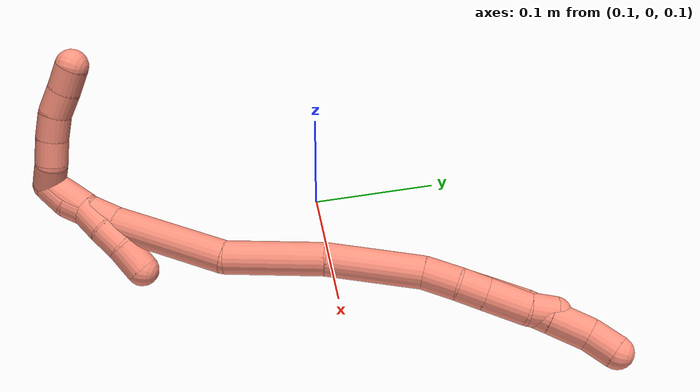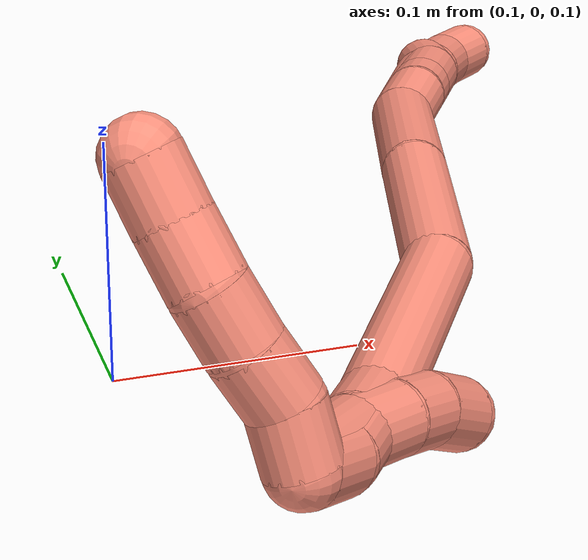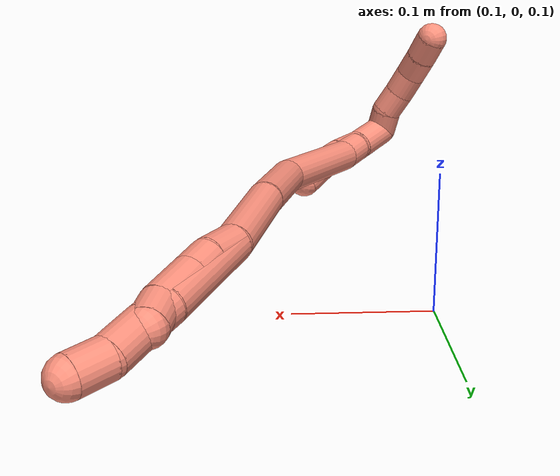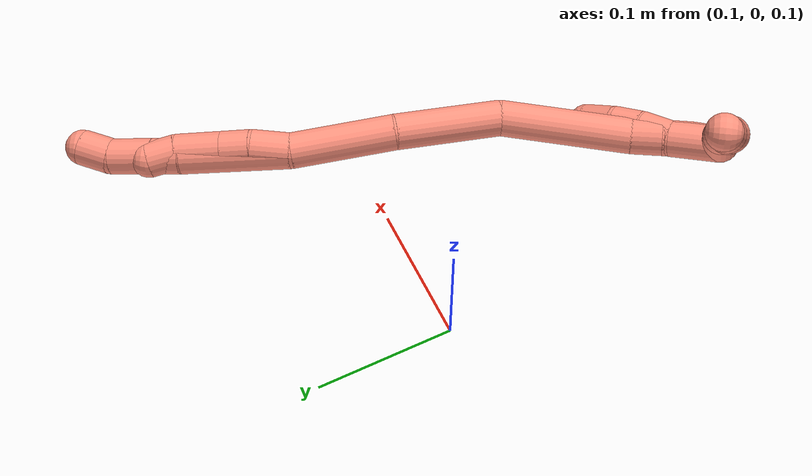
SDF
<sdf version="1.7">
 <world name="default">
  <model name="16">
   <static>0</static>
   <link name="16">
    <collision name="collision-cylinder-e_1_2_8">
     <pose>-0.000364 0.005638 0.037938 -0.14752 -0.009488 0.000701</pose>
     <geometry><cylinder><radius>0.0125</radius><length>0.076712</length></cylinder></geometry>
     <surface>
      <friction><ode><mu>1.16</mu><mu2>1.16</mu2><slip1>0</slip1><slip2>0</slip2></ode></friction>
      <contact><ode><kp>1e+06</kp><kd>1</kd><max_vel>0</max_vel><min_depth>0.001</min_depth></ode></contact>
     </surface>
    </collision>
    <visual name="visual-cylinder-e_1_2_8">
     <pose>-0.000364 0.005638 0.037938 -0.14752 -0.009488 0.000701</pose>
     <geometry><cylinder><radius>0.0125</radius><length>0.076712</length></cylinder></geometry>
     <material><ambient>1 0.576471 0.494118 1</ambient></material>
    </visual>
    <collision name="collision-cylinder-e_2_8_9">
     <pose>0.000125 0.012508 0.085916 -0.122175 0.084129 -0.005149</pose>
     <geometry><cylinder><radius>0.0125</radius><length>0.020303</length></cylinder></geometry>
     <surface>
      <friction><ode><mu>1.16</mu><mu2>1.16</mu2><slip1>0</slip1><slip2>0</slip2></ode></friction>
      <contact><ode><kp>1e+06</kp><kd>1</kd><max_vel>0</max_vel><min_depth>0.001</min_depth></ode></contact>
     </surface>
    </collision>
    <visual name="visual-cylinder-e_2_8_9">
     <pose>0.000125 0.012508 0.085916 -0.122175 0.084129 -0.005149</pose>
     <geometry><cylinder><radius>0.0125</radius><length>0.020303</length></cylinder></geometry>
     <material><ambient>1 0.576471 0.494118 1</ambient></material>
    </visual>
    <collision name="collision-cylinder-e_3_9_10">
     <pose>0.002342 0.016038 0.110742 -0.154128 0.090893 -0.007023</pose>
     <geometry><cylinder><radius>0.0125</radius><length>0.030051</length></cylinder></geometry>
     <surface>
      <friction><ode><mu>1.16</mu><mu2>1.16</mu2><slip1>0</slip1><slip2>0</slip2></ode></friction>
      <contact><ode><kp>1e+06</kp><kd>1</kd><max_vel>0</max_vel><min_depth>0.001</min_depth></ode></contact>
     </surface>
    </collision>
    <visual name="visual-cylinder-e_3_9_10">
     <pose>0.002342 0.016038 0.110742 -0.154128 0.090893 -0.007023</pose>
     <geometry><cylinder><radius>0.0125</radius><length>0.030051</length></cylinder></geometry>
     <material><ambient>1 0.576471 0.494118 1</ambient></material>
    </visual>
    <collision name="collision-cylinder-e_4_10_6">
     <pose>0.006717 0.017307 0.136544 0.093072 0.265747 0.012449</pose>
     <geometry><cylinder><radius>0.0125</radius><length>0.022934</length></cylinder></geometry>
     <surface>
      <friction><ode><mu>1.16</mu><mu2>1.16</mu2><slip1>0</slip1><slip2>0</slip2></ode></friction>
      <contact><ode><kp>1e+06</kp><kd>1</kd><max_vel>0</max_vel><min_depth>0.001</min_depth></ode></contact>
     </surface>
    </collision>
    <visual name="visual-cylinder-e_4_10_6">
     <pose>0.006717 0.017307 0.136544 0.093072 0.265747 0.012449</pose>
     <geometry><cylinder><radius>0.0125</radius><length>0.022934</length></cylinder></geometry>
     <material><ambient>1 0.576471 0.494118 1</ambient></material>
    </visual>
    <collision name="collision-cylinder-e_1_2_11">
     <pose>-6.9e-05 -7.1e-05 0.013604 0.005227 -0.005088 -1.3e-05</pose>
     <geometry><cylinder><radius>0.0125</radius><length>0.027209</length></cylinder></geometry>
     <surface>
      <friction><ode><mu>1.16</mu><mu2>1.16</mu2><slip1>0</slip1><slip2>0</slip2></ode></friction>
      <contact><ode><kp>1e+06</kp><kd>1</kd><max_vel>0</max_vel><min_depth>0.001</min_depth></ode></contact>
     </surface>
    </collision>
    <visual name="visual-cylinder-e_1_2_11">
     <pose>-6.9e-05 -7.1e-05 0.013604 0.005227 -0.005088 -1.3e-05</pose>
     <geometry><cylinder><radius>0.0125</radius><length>0.027209</length></cylinder></geometry>
     <material><ambient>1 0.576471 0.494118 1</ambient></material>
    </visual>
    <collision name="collision-cylinder-e_2_11_12">
     <pose>6.5e-05 0.001632 0.037276 -0.174477 0.019936 -0.001744</pose>
     <geometry><cylinder><radius>0.0125</radius><length>0.02045</length></cylinder></geometry>
     <surface>
      <friction><ode><mu>1.16</mu><mu2>1.16</mu2><slip1>0</slip1><slip2>0</slip2></ode></friction>
      <contact><ode><kp>1e+06</kp><kd>1</kd><max_vel>0</max_vel><min_depth>0.001</min_depth></ode></contact>
     </surface>
    </collision>
    <visual name="visual-cylinder-e_2_11_12">
     <pose>6.5e-05 0.001632 0.037276 -0.174477 0.019936 -0.001744</pose>
     <geometry><cylinder><radius>0.0125</radius><length>0.02045</length></cylinder></geometry>
     <material><ambient>1 0.576471 0.494118 1</ambient></material>
    </visual>
    <collision name="collision-cylinder-e_3_12_13">
     <pose>0.00053 0.006155 0.063249 -0.17109 0.016156 -0.001385</pose>
     <geometry><cylinder><radius>0.0125</radius><length>0.032287</length></cylinder></geometry>
     <surface>
      <friction><ode><mu>1.16</mu><mu2>1.16</mu2><slip1>0</slip1><slip2>0</slip2></ode></friction>
      <contact><ode><kp>1e+06</kp><kd>1</kd><max_vel>0</max_vel><min_depth>0.001</min_depth></ode></contact>
     </surface>
    </collision>
    <visual name="visual-cylinder-e_3_12_13">
     <pose>0.00053 0.006155 0.063249 -0.17109 0.016156 -0.001385</pose>
     <geometry><cylinder><radius>0.0125</radius><length>0.032287</length></cylinder></geometry>
     <material><ambient>1 0.576471 0.494118 1</ambient></material>
    </visual>
    <collision name="collision-cylinder-e_4_13_5">
     <pose>-0.000968 0.012036 0.088516 -0.322949 -0.176361 0.028801</pose>
     <geometry><cylinder><radius>0.0125</radius><length>0.020055</length></cylinder></geometry>
     <surface>
      <friction><ode><mu>1.16</mu><mu2>1.16</mu2><slip1>0</slip1><slip2>0</slip2></ode></friction>
      <contact><ode><kp>1e+06</kp><kd>1</kd><max_vel>0</max_vel><min_depth>0.001</min_depth></ode></contact>
     </surface>
    </collision>
    <visual name="visual-cylinder-e_4_13_5">
     <pose>-0.000968 0.012036 0.088516 -0.322949 -0.176361 0.028801</pose>
     <geometry><cylinder><radius>0.0125</radius><length>0.020055</length></cylinder></geometry>
     <material><ambient>1 0.576471 0.494118 1</ambient></material>
    </visual>
    <collision name="collision-cylinder-e_1_2_14">
     <pose>0.007102 -0.007252 -0.034745 2.93583 0.197476 1.52943</pose>
     <geometry><cylinder><radius>0.0125</radius><length>0.072395</length></cylinder></geometry>
     <surface>
      <friction><ode><mu>1.16</mu><mu2>1.16</mu2><slip1>0</slip1><slip2>0</slip2></ode></friction>
      <contact><ode><kp>1e+06</kp><kd>1</kd><max_vel>0</max_vel><min_depth>0.001</min_depth></ode></contact>
     </surface>
    </collision>
    <visual name="visual-cylinder-e_1_2_14">
     <pose>0.007102 -0.007252 -0.034745 2.93583 0.197476 1.52943</pose>
     <geometry><cylinder><radius>0.0125</radius><length>0.072395</length></cylinder></geometry>
     <material><ambient>1 0.576471 0.494118 1</ambient></material>
    </visual>
    <collision name="collision-cylinder-e_2_14_15">
     <pose>0.025492 -0.018253 -0.104635 3.0353 0.309152 2.48361</pose>
     <geometry><cylinder><radius>0.0125</radius><length>0.074205</length></cylinder></geometry>
     <surface>
      <friction><ode><mu>1.16</mu><mu2>1.16</mu2><slip1>0</slip1><slip2>0</slip2></ode></friction>
      <contact><ode><kp>1e+06</kp><kd>1</kd><max_vel>0</max_vel><min_depth>0.001</min_depth></ode></contact>
     </surface>
    </collision>
    <visual name="visual-cylinder-e_2_14_15">
     <pose>0.025492 -0.018253 -0.104635 3.0353 0.309152 2.48361</pose>
     <geometry><cylinder><radius>0.0125</radius><length>0.074205</length></cylinder></geometry>
     <material><ambient>1 0.576471 0.494118 1</ambient></material>
    </visual>
    <collision name="collision-cylinder-e_3_15_16">
     <pose>0.03789 -0.019075 -0.185282 -3.07733 0.02432 -0.723355</pose>
     <geometry><cylinder><radius>0.0125</radius><length>0.091222</length></cylinder></geometry>
     <surface>
      <friction><ode><mu>1.16</mu><mu2>1.16</mu2><slip1>0</slip1><slip2>0</slip2></ode></friction>
      <contact><ode><kp>1e+06</kp><kd>1</kd><max_vel>0</max_vel><min_depth>0.001</min_depth></ode></contact>
     </surface>
    </collision>
    <visual name="visual-cylinder-e_3_15_16">
     <pose>0.03789 -0.019075 -0.185282 -3.07733 0.02432 -0.723355</pose>
     <geometry><cylinder><radius>0.0125</radius><length>0.091222</length></cylinder></geometry>
     <material><ambient>1 0.576471 0.494118 1</ambient></material>
    </visual>
    <collision name="collision-cylinder-e_4_16_17">
     <pose>0.038152 -0.016897 -0.241668 3.07275 -0.077462 -1.68863</pose>
     <geometry><cylinder><radius>0.0125</radius><length>0.021882</length></cylinder></geometry>
     <surface>
      <friction><ode><mu>1.16</mu><mu2>1.16</mu2><slip1>0</slip1><slip2>0</slip2></ode></friction>
      <contact><ode><kp>1e+06</kp><kd>1</kd><max_vel>0</max_vel><min_depth>0.001</min_depth></ode></contact>
     </surface>
    </collision>
    <visual name="visual-cylinder-e_4_16_17">
     <pose>0.038152 -0.016897 -0.241668 3.07275 -0.077462 -1.68863</pose>
     <geometry><cylinder><radius>0.0125</radius><length>0.021882</length></cylinder></geometry>
     <material><ambient>1 0.576471 0.494118 1</ambient></material>
    </visual>
    <collision name="collision-cylinder-e_5_17_18">
     <pose>0.036483 -0.018208 -0.262586 3.08576 -0.081644 -1.94218</pose>
     <geometry><cylinder><radius>0.0125</radius><length>0.020171</length></cylinder></geometry>
     <surface>
      <friction><ode><mu>1.16</mu><mu2>1.16</mu2><slip1>0</slip1><slip2>0</slip2></ode></friction>
      <contact><ode><kp>1e+06</kp><kd>1</kd><max_vel>0</max_vel><min_depth>0.001</min_depth></ode></contact>
     </surface>
    </collision>
    <visual name="visual-cylinder-e_5_17_18">
     <pose>0.036483 -0.018208 -0.262586 3.08576 -0.081644 -1.94218</pose>
     <geometry><cylinder><radius>0.0125</radius><length>0.020171</length></cylinder></geometry>
     <material><ambient>1 0.576471 0.494118 1</ambient></material>
    </visual>
    <collision name="collision-cylinder-e_6_18_1">
     <pose>0.031783 -0.019714 -0.28186 3.0396 -0.395539 -2.6428</pose>
     <geometry><cylinder><radius>0.0125</radius><length>0.020125</length></cylinder></geometry>
     <surface>
      <friction><ode><mu>1.16</mu><mu2>1.16</mu2><slip1>0</slip1><slip2>0</slip2></ode></friction>
      <contact><ode><kp>1e+06</kp><kd>1</kd><max_vel>0</max_vel><min_depth>0.001</min_depth></ode></contact>
     </surface>
    </collision>
    <visual name="visual-cylinder-e_6_18_1">
     <pose>0.031783 -0.019714 -0.28186 3.0396 -0.395539 -2.6428</pose>
     <geometry><cylinder><radius>0.0125</radius><length>0.020125</length></cylinder></geometry>
     <material><ambient>1 0.576471 0.494118 1</ambient></material>
    </visual>
    <collision name="collision-cylinder-e_1_1_19">
     <pose>0.020254 -0.027026 -0.290138 1.42131 -0.871321 -0.762105</pose>
     <geometry><cylinder><radius>0.0125</radius><length>0.02</length></cylinder></geometry>
     <surface>
      <friction><ode><mu>1.16</mu><mu2>1.16</mu2><slip1>0</slip1><slip2>0</slip2></ode></friction>
      <contact><ode><kp>1e+06</kp><kd>1</kd><max_vel>0</max_vel><min_depth>0.001</min_depth></ode></contact>
     </surface>
    </collision>
    <visual name="visual-cylinder-e_1_1_19">
     <pose>0.020254 -0.027026 -0.290138 1.42131 -0.871321 -0.762105</pose>
     <geometry><cylinder><radius>0.0125</radius><length>0.02</length></cylinder></geometry>
     <material><ambient>1 0.576471 0.494118 1</ambient></material>
    </visual>
    <collision name="collision-cylinder-e_2_19_20">
     <pose>0.003628 -0.037625 -0.29042 1.85587 -1.11403 -1.38732</pose>
     <geometry><cylinder><radius>0.0125</radius><length>0.02</length></cylinder></geometry>
     <surface>
      <friction><ode><mu>1.16</mu><mu2>1.16</mu2><slip1>0</slip1><slip2>0</slip2></ode></friction>
      <contact><ode><kp>1e+06</kp><kd>1</kd><max_vel>0</max_vel><min_depth>0.001</min_depth></ode></contact>
     </surface>
    </collision>
    <visual name="visual-cylinder-e_2_19_20">
     <pose>0.003628 -0.037625 -0.29042 1.85587 -1.11403 -1.38732</pose>
     <geometry><cylinder><radius>0.0125</radius><length>0.02</length></cylinder></geometry>
     <material><ambient>1 0.576471 0.494118 1</ambient></material>
    </visual>
    <collision name="collision-cylinder-e_3_20_21">
     <pose>-0.014295 -0.04632 -0.291788 1.59929 -1.10798 -1.13364</pose>
     <geometry><cylinder><radius>0.0125</radius><length>0.02</length></cylinder></geometry>
     <surface>
      <friction><ode><mu>1.16</mu><mu2>1.16</mu2><slip1>0</slip1><slip2>0</slip2></ode></friction>
      <contact><ode><kp>1e+06</kp><kd>1</kd><max_vel>0</max_vel><min_depth>0.001</min_depth></ode></contact>
     </surface>
    </collision>
    <visual name="visual-cylinder-e_3_20_21">
     <pose>-0.014295 -0.04632 -0.291788 1.59929 -1.10798 -1.13364</pose>
     <geometry><cylinder><radius>0.0125</radius><length>0.02</length></cylinder></geometry>
     <material><ambient>1 0.576471 0.494118 1</ambient></material>
    </visual>
    <collision name="collision-cylinder-e_4_21_22">
     <pose>-0.032199 -0.054714 -0.289831 1.08332 -1.10967 -0.713874</pose>
     <geometry><cylinder><radius>0.0125</radius><length>0.02</length></cylinder></geometry>
     <surface>
      <friction><ode><mu>1.16</mu><mu2>1.16</mu2><slip1>0</slip1><slip2>0</slip2></ode></friction>
      <contact><ode><kp>1e+06</kp><kd>1</kd><max_vel>0</max_vel><min_depth>0.001</min_depth></ode></contact>
     </surface>
    </collision>
    <visual name="visual-cylinder-e_4_21_22">
     <pose>-0.032199 -0.054714 -0.289831 1.08332 -1.10967 -0.713874</pose>
     <geometry><cylinder><radius>0.0125</radius><length>0.02</length></cylinder></geometry>
     <material><ambient>1 0.576471 0.494118 1</ambient></material>
    </visual>
    <collision name="collision-cylinder-e_5_22_4">
     <pose>-0.049965 -0.063008 -0.28592 1.17427 -1.07819 -0.75765</pose>
     <geometry><cylinder><radius>0.0125</radius><length>0.02</length></cylinder></geometry>
     <surface>
      <friction><ode><mu>1.16</mu><mu2>1.16</mu2><slip1>0</slip1><slip2>0</slip2></ode></friction>
      <contact><ode><kp>1e+06</kp><kd>1</kd><max_vel>0</max_vel><min_depth>0.001</min_depth></ode></contact>
     </surface>
    </collision>
    <visual name="visual-cylinder-e_5_22_4">
     <pose>-0.049965 -0.063008 -0.28592 1.17427 -1.07819 -0.75765</pose>
     <geometry><cylinder><radius>0.0125</radius><length>0.02</length></cylinder></geometry>
     <material><ambient>1 0.576471 0.494118 1</ambient></material>
    </visual>
    <collision name="collision-cylinder-e_1_1_23">
     <pose>0.032049 -0.019322 -0.274447 -0.080168 0.243113 -0.009798</pose>
     <geometry><cylinder><radius>0.0125</radius><length>0.03442</length></cylinder></geometry>
     <surface>
      <friction><ode><mu>1.16</mu><mu2>1.16</mu2><slip1>0</slip1><slip2>0</slip2></ode></friction>
      <contact><ode><kp>1e+06</kp><kd>1</kd><max_vel>0</max_vel><min_depth>0.001</min_depth></ode></contact>
     </surface>
    </collision>
    <visual name="visual-cylinder-e_1_1_23">
     <pose>0.032049 -0.019322 -0.274447 -0.080168 0.243113 -0.009798</pose>
     <geometry><cylinder><radius>0.0125</radius><length>0.03442</length></cylinder></geometry>
     <material><ambient>1 0.576471 0.494118 1</ambient></material>
    </visual>
    <collision name="collision-cylinder-e_2_23_24">
     <pose>0.040969 -0.018641 -0.247613 0.064444 0.43786 0.014343</pose>
     <geometry><cylinder><radius>0.0125</radius><length>0.022536</length></cylinder></geometry>
     <surface>
      <friction><ode><mu>1.16</mu><mu2>1.16</mu2><slip1>0</slip1><slip2>0</slip2></ode></friction>
      <contact><ode><kp>1e+06</kp><kd>1</kd><max_vel>0</max_vel><min_depth>0.001</min_depth></ode></contact>
     </surface>
    </collision>
    <visual name="visual-cylinder-e_2_23_24">
     <pose>0.040969 -0.018641 -0.247613 0.064444 0.43786 0.014343</pose>
     <geometry><cylinder><radius>0.0125</radius><length>0.022536</length></cylinder></geometry>
     <material><ambient>1 0.576471 0.494118 1</ambient></material>
    </visual>
    <collision name="collision-cylinder-e_3_24_25">
     <pose>0.0498 -0.01854 -0.228304 -0.082907 0.416707 -0.017538</pose>
     <geometry><cylinder><radius>0.0125</radius><length>0.020028</length></cylinder></geometry>
     <surface>
      <friction><ode><mu>1.16</mu><mu2>1.16</mu2><slip1>0</slip1><slip2>0</slip2></ode></friction>
      <contact><ode><kp>1e+06</kp><kd>1</kd><max_vel>0</max_vel><min_depth>0.001</min_depth></ode></contact>
     </surface>
    </collision>
    <visual name="visual-cylinder-e_3_24_25">
     <pose>0.0498 -0.01854 -0.228304 -0.082907 0.416707 -0.017538</pose>
     <geometry><cylinder><radius>0.0125</radius><length>0.020028</length></cylinder></geometry>
     <material><ambient>1 0.576471 0.494118 1</ambient></material>
    </visual>
    <collision name="collision-cylinder-e_4_25_3">
     <pose>0.059715 -0.015058 -0.209657 -0.278686 0.534388 -0.076747</pose>
     <geometry><cylinder><radius>0.0125</radius><length>0.023016</length></cylinder></geometry>
     <surface>
      <friction><ode><mu>1.16</mu><mu2>1.16</mu2><slip1>0</slip1><slip2>0</slip2></ode></friction>
      <contact><ode><kp>1e+06</kp><kd>1</kd><max_vel>0</max_vel><min_depth>0.001</min_depth></ode></contact>
     </surface>
    </collision>
    <visual name="visual-cylinder-e_4_25_3">
     <pose>0.059715 -0.015058 -0.209657 -0.278686 0.534388 -0.076747</pose>
     <geometry><cylinder><radius>0.0125</radius><length>0.023016</length></cylinder></geometry>
     <material><ambient>1 0.576471 0.494118 1</ambient></material>
    </visual>
    <collision name="collision-sphere-3">
     <pose>0.065576 -0.012333 -0.200135 0 -0 0</pose>
     <geometry><sphere><radius>0.0125</radius></sphere></geometry>
     <surface>
      <friction><ode><mu>1.16</mu><mu2>1.16</mu2><slip1>0</slip1><slip2>0</slip2></ode></friction>
      <contact><ode><kp>1e+06</kp><kd>1</kd><max_vel>0</max_vel><min_depth>0.001</min_depth></ode></contact>
     </surface>
    </collision>
    <visual name="visual-sphere-3">
     <pose>0.065576 -0.012333 -0.200135 0 -0 0</pose>
     <geometry><sphere><radius>0.0125</radius></sphere></geometry>
     <material><ambient>1 0.576471 0.494118 1</ambient></material>
    </visual>
    <collision name="collision-sphere-25">
     <pose>0.053853 -0.017782 -0.219178 0 -0 0</pose>
     <geometry><sphere><radius>0.0125</radius></sphere></geometry>
     <surface>
      <friction><ode><mu>1.16</mu><mu2>1.16</mu2><slip1>0</slip1><slip2>0</slip2></ode></friction>
      <contact><ode><kp>1e+06</kp><kd>1</kd><max_vel>0</max_vel><min_depth>0.001</min_depth></ode></contact>
     </surface>
    </collision>
    <visual name="visual-sphere-25">
     <pose>0.053853 -0.017782 -0.219178 0 -0 0</pose>
     <geometry><sphere><radius>0.0125</radius></sphere></geometry>
     <material><ambient>1 0.576471 0.494118 1</ambient></material>
    </visual>
    <collision name="collision-sphere-24">
     <pose>0.045747 -0.019299 -0.23743 0 -0 0</pose>
     <geometry><sphere><radius>0.0125</radius></sphere></geometry>
     <surface>
      <friction><ode><mu>1.16</mu><mu2>1.16</mu2><slip1>0</slip1><slip2>0</slip2></ode></friction>
      <contact><ode><kp>1e+06</kp><kd>1</kd><max_vel>0</max_vel><min_depth>0.001</min_depth></ode></contact>
     </surface>
    </collision>
    <visual name="visual-sphere-24">
     <pose>0.045747 -0.019299 -0.23743 0 -0 0</pose>
     <geometry><sphere><radius>0.0125</radius></sphere></geometry>
     <material><ambient>1 0.576471 0.494118 1</ambient></material>
    </visual>
    <collision name="collision-sphere-23">
     <pose>0.036192 -0.017984 -0.257797 0 -0 0</pose>
     <geometry><sphere><radius>0.0125</radius></sphere></geometry>
     <surface>
      <friction><ode><mu>1.16</mu><mu2>1.16</mu2><slip1>0</slip1><slip2>0</slip2></ode></friction>
      <contact><ode><kp>1e+06</kp><kd>1</kd><max_vel>0</max_vel><min_depth>0.001</min_depth></ode></contact>
     </surface>
    </collision>
    <visual name="visual-sphere-23">
     <pose>0.036192 -0.017984 -0.257797 0 -0 0</pose>
     <geometry><sphere><radius>0.0125</radius></sphere></geometry>
     <material><ambient>1 0.576471 0.494118 1</ambient></material>
    </visual>
    <collision name="collision-sphere-4">
     <pose>-0.058776 -0.06737 -0.284093 0 -0 0</pose>
     <geometry><sphere><radius>0.0125</radius></sphere></geometry>
     <surface>
      <friction><ode><mu>1.16</mu><mu2>1.16</mu2><slip1>0</slip1><slip2>0</slip2></ode></friction>
      <contact><ode><kp>1e+06</kp><kd>1</kd><max_vel>0</max_vel><min_depth>0.001</min_depth></ode></contact>
     </surface>
    </collision>
    <visual name="visual-sphere-4">
     <pose>-0.058776 -0.06737 -0.284093 0 -0 0</pose>
     <geometry><sphere><radius>0.0125</radius></sphere></geometry>
     <material><ambient>1 0.576471 0.494118 1</ambient></material>
    </visual>
    <collision name="collision-sphere-22">
     <pose>-0.041154 -0.058646 -0.287746 0 -0 0</pose>
     <geometry><sphere><radius>0.0125</radius></sphere></geometry>
     <surface>
      <friction><ode><mu>1.16</mu><mu2>1.16</mu2><slip1>0</slip1><slip2>0</slip2></ode></friction>
      <contact><ode><kp>1e+06</kp><kd>1</kd><max_vel>0</max_vel><min_depth>0.001</min_depth></ode></contact>
     </surface>
    </collision>
    <visual name="visual-sphere-22">
     <pose>-0.041154 -0.058646 -0.287746 0 -0 0</pose>
     <geometry><sphere><radius>0.0125</radius></sphere></geometry>
     <material><ambient>1 0.576471 0.494118 1</ambient></material>
    </visual>
    <collision name="collision-sphere-21">
     <pose>-0.023243 -0.050783 -0.291915 0 -0 0</pose>
     <geometry><sphere><radius>0.0125</radius></sphere></geometry>
     <surface>
      <friction><ode><mu>1.16</mu><mu2>1.16</mu2><slip1>0</slip1><slip2>0</slip2></ode></friction>
      <contact><ode><kp>1e+06</kp><kd>1</kd><max_vel>0</max_vel><min_depth>0.001</min_depth></ode></contact>
     </surface>
    </collision>
    <visual name="visual-sphere-21">
     <pose>-0.023243 -0.050783 -0.291915 0 -0 0</pose>
     <geometry><sphere><radius>0.0125</radius></sphere></geometry>
     <material><ambient>1 0.576471 0.494118 1</ambient></material>
    </visual>
    <collision name="collision-sphere-20">
     <pose>-0.005347 -0.041857 -0.29166 0 -0 0</pose>
     <geometry><sphere><radius>0.0125</radius></sphere></geometry>
     <surface>
      <friction><ode><mu>1.16</mu><mu2>1.16</mu2><slip1>0</slip1><slip2>0</slip2></ode></friction>
      <contact><ode><kp>1e+06</kp><kd>1</kd><max_vel>0</max_vel><min_depth>0.001</min_depth></ode></contact>
     </surface>
    </collision>
    <visual name="visual-sphere-20">
     <pose>-0.005347 -0.041857 -0.29166 0 -0 0</pose>
     <geometry><sphere><radius>0.0125</radius></sphere></geometry>
     <material><ambient>1 0.576471 0.494118 1</ambient></material>
    </visual>
    <collision name="collision-sphere-11">
     <pose>-0.000138 -0.000142 0.027208 0 -0 0</pose>
     <geometry><sphere><radius>0.0125</radius></sphere></geometry>
     <surface>
      <friction><ode><mu>1.16</mu><mu2>1.16</mu2><slip1>0</slip1><slip2>0</slip2></ode></friction>
      <contact><ode><kp>1e+06</kp><kd>1</kd><max_vel>0</max_vel><min_depth>0.001</min_depth></ode></contact>
     </surface>
    </collision>
    <visual name="visual-sphere-11">
     <pose>-0.000138 -0.000142 0.027208 0 -0 0</pose>
     <geometry><sphere><radius>0.0125</radius></sphere></geometry>
     <material><ambient>1 0.576471 0.494118 1</ambient></material>
    </visual>
    <collision name="collision-sphere-6">
     <pose>0.009729 0.016278 0.147561 0 -0 0</pose>
     <geometry><sphere><radius>0.0125</radius></sphere></geometry>
     <surface>
      <friction><ode><mu>1.16</mu><mu2>1.16</mu2><slip1>0</slip1><slip2>0</slip2></ode></friction>
      <contact><ode><kp>1e+06</kp><kd>1</kd><max_vel>0</max_vel><min_depth>0.001</min_depth></ode></contact>
     </surface>
    </collision>
    <visual name="visual-sphere-6">
     <pose>0.009729 0.016278 0.147561 0 -0 0</pose>
     <geometry><sphere><radius>0.0125</radius></sphere></geometry>
     <material><ambient>1 0.576471 0.494118 1</ambient></material>
    </visual>
    <collision name="collision-sphere-10">
     <pose>0.003706 0.018335 0.125528 0 -0 0</pose>
     <geometry><sphere><radius>0.0125</radius></sphere></geometry>
     <surface>
      <friction><ode><mu>1.16</mu><mu2>1.16</mu2><slip1>0</slip1><slip2>0</slip2></ode></friction>
      <contact><ode><kp>1e+06</kp><kd>1</kd><max_vel>0</max_vel><min_depth>0.001</min_depth></ode></contact>
     </surface>
    </collision>
    <visual name="visual-sphere-10">
     <pose>0.003706 0.018335 0.125528 0 -0 0</pose>
     <geometry><sphere><radius>0.0125</radius></sphere></geometry>
     <material><ambient>1 0.576471 0.494118 1</ambient></material>
    </visual>
    <collision name="collision-sphere-9">
     <pose>0.000978 0.013741 0.095955 0 -0 0</pose>
     <geometry><sphere><radius>0.0125</radius></sphere></geometry>
     <surface>
      <friction><ode><mu>1.16</mu><mu2>1.16</mu2><slip1>0</slip1><slip2>0</slip2></ode></friction>
      <contact><ode><kp>1e+06</kp><kd>1</kd><max_vel>0</max_vel><min_depth>0.001</min_depth></ode></contact>
     </surface>
    </collision>
    <visual name="visual-sphere-9">
     <pose>0.000978 0.013741 0.095955 0 -0 0</pose>
     <geometry><sphere><radius>0.0125</radius></sphere></geometry>
     <material><ambient>1 0.576471 0.494118 1</ambient></material>
    </visual>
    <collision name="collision-sphere-2">
     <geometry><sphere><radius>0.0125</radius></sphere></geometry>
     <surface>
      <friction><ode><mu>1.16</mu><mu2>1.16</mu2><slip1>0</slip1><slip2>0</slip2></ode></friction>
      <contact><ode><kp>1e+06</kp><kd>1</kd><max_vel>0</max_vel><min_depth>0.001</min_depth></ode></contact>
     </surface>
    </collision>
    <visual name="visual-sphere-2">
     <geometry><sphere><radius>0.0125</radius></sphere></geometry>
     <material><ambient>1 0.576471 0.494118 1</ambient></material>
    </visual>
    <collision name="collision-sphere-19">
     <pose>0.012602 -0.033392 -0.28918 0 -0 0</pose>
     <geometry><sphere><radius>0.0125</radius></sphere></geometry>
     <surface>
      <friction><ode><mu>1.16</mu><mu2>1.16</mu2><slip1>0</slip1><slip2>0</slip2></ode></friction>
      <contact><ode><kp>1e+06</kp><kd>1</kd><max_vel>0</max_vel><min_depth>0.001</min_depth></ode></contact>
     </surface>
    </collision>
    <visual name="visual-sphere-19">
     <pose>0.012602 -0.033392 -0.28918 0 -0 0</pose>
     <geometry><sphere><radius>0.0125</radius></sphere></geometry>
     <material><ambient>1 0.576471 0.494118 1</ambient></material>
    </visual>
    <collision name="collision-sphere-8">
     <pose>-0.000728 0.011275 0.075876 0 -0 0</pose>
     <geometry><sphere><radius>0.0125</radius></sphere></geometry>
     <surface>
      <friction><ode><mu>1.16</mu><mu2>1.16</mu2><slip1>0</slip1><slip2>0</slip2></ode></friction>
      <contact><ode><kp>1e+06</kp><kd>1</kd><max_vel>0</max_vel><min_depth>0.001</min_depth></ode></contact>
     </surface>
    </collision>
    <visual name="visual-sphere-8">
     <pose>-0.000728 0.011275 0.075876 0 -0 0</pose>
     <geometry><sphere><radius>0.0125</radius></sphere></geometry>
     <material><ambient>1 0.576471 0.494118 1</ambient></material>
    </visual>
    <collision name="collision-sphere-12">
     <pose>0.000269 0.003407 0.047344 0 -0 0</pose>
     <geometry><sphere><radius>0.0125</radius></sphere></geometry>
     <surface>
      <friction><ode><mu>1.16</mu><mu2>1.16</mu2><slip1>0</slip1><slip2>0</slip2></ode></friction>
      <contact><ode><kp>1e+06</kp><kd>1</kd><max_vel>0</max_vel><min_depth>0.001</min_depth></ode></contact>
     </surface>
    </collision>
    <visual name="visual-sphere-12">
     <pose>0.000269 0.003407 0.047344 0 -0 0</pose>
     <geometry><sphere><radius>0.0125</radius></sphere></geometry>
     <material><ambient>1 0.576471 0.494118 1</ambient></material>
    </visual>
    <collision name="collision-sphere-13">
     <pose>0.000791 0.008903 0.079155 0 -0 0</pose>
     <geometry><sphere><radius>0.0125</radius></sphere></geometry>
     <surface>
      <friction><ode><mu>1.16</mu><mu2>1.16</mu2><slip1>0</slip1><slip2>0</slip2></ode></friction>
      <contact><ode><kp>1e+06</kp><kd>1</kd><max_vel>0</max_vel><min_depth>0.001</min_depth></ode></contact>
     </surface>
    </collision>
    <visual name="visual-sphere-13">
     <pose>0.000791 0.008903 0.079155 0 -0 0</pose>
     <geometry><sphere><radius>0.0125</radius></sphere></geometry>
     <material><ambient>1 0.576471 0.494118 1</ambient></material>
    </visual>
    <collision name="collision-sphere-5">
     <pose>-0.002728 0.015169 0.097878 0 -0 0</pose>
     <geometry><sphere><radius>0.0125</radius></sphere></geometry>
     <surface>
      <friction><ode><mu>1.16</mu><mu2>1.16</mu2><slip1>0</slip1><slip2>0</slip2></ode></friction>
      <contact><ode><kp>1e+06</kp><kd>1</kd><max_vel>0</max_vel><min_depth>0.001</min_depth></ode></contact>
     </surface>
    </collision>
    <visual name="visual-sphere-5">
     <pose>-0.002728 0.015169 0.097878 0 -0 0</pose>
     <geometry><sphere><radius>0.0125</radius></sphere></geometry>
     <material><ambient>1 0.576471 0.494118 1</ambient></material>
    </visual>
    <collision name="collision-sphere-14">
     <pose>0.014204 -0.014504 -0.069491 0 -0 0</pose>
     <geometry><sphere><radius>0.0125</radius></sphere></geometry>
     <surface>
      <friction><ode><mu>1.16</mu><mu2>1.16</mu2><slip1>0</slip1><slip2>0</slip2></ode></friction>
      <contact><ode><kp>1e+06</kp><kd>1</kd><max_vel>0</max_vel><min_depth>0.001</min_depth></ode></contact>
     </surface>
    </collision>
    <visual name="visual-sphere-14">
     <pose>0.014204 -0.014504 -0.069491 0 -0 0</pose>
     <geometry><sphere><radius>0.0125</radius></sphere></geometry>
     <material><ambient>1 0.576471 0.494118 1</ambient></material>
    </visual>
    <collision name="collision-sphere-15">
     <pose>0.03678 -0.022003 -0.139778 0 -0 0</pose>
     <geometry><sphere><radius>0.0125</radius></sphere></geometry>
     <surface>
      <friction><ode><mu>1.16</mu><mu2>1.16</mu2><slip1>0</slip1><slip2>0</slip2></ode></friction>
      <contact><ode><kp>1e+06</kp><kd>1</kd><max_vel>0</max_vel><min_depth>0.001</min_depth></ode></contact>
     </surface>
    </collision>
    <visual name="visual-sphere-15">
     <pose>0.03678 -0.022003 -0.139778 0 -0 0</pose>
     <geometry><sphere><radius>0.0125</radius></sphere></geometry>
     <material><ambient>1 0.576471 0.494118 1</ambient></material>
    </visual>
    <collision name="collision-sphere-16">
     <pose>0.038999 -0.016146 -0.230786 0 -0 0</pose>
     <geometry><sphere><radius>0.0125</radius></sphere></geometry>
     <surface>
      <friction><ode><mu>1.16</mu><mu2>1.16</mu2><slip1>0</slip1><slip2>0</slip2></ode></friction>
      <contact><ode><kp>1e+06</kp><kd>1</kd><max_vel>0</max_vel><min_depth>0.001</min_depth></ode></contact>
     </surface>
    </collision>
    <visual name="visual-sphere-16">
     <pose>0.038999 -0.016146 -0.230786 0 -0 0</pose>
     <geometry><sphere><radius>0.0125</radius></sphere></geometry>
     <material><ambient>1 0.576471 0.494118 1</ambient></material>
    </visual>
    <collision name="collision-sphere-17">
     <pose>0.037305 -0.017647 -0.25255 0 -0 0</pose>
     <geometry><sphere><radius>0.0125</radius></sphere></geometry>
     <surface>
      <friction><ode><mu>1.16</mu><mu2>1.16</mu2><slip1>0</slip1><slip2>0</slip2></ode></friction>
      <contact><ode><kp>1e+06</kp><kd>1</kd><max_vel>0</max_vel><min_depth>0.001</min_depth></ode></contact>
     </surface>
    </collision>
    <visual name="visual-sphere-17">
     <pose>0.037305 -0.017647 -0.25255 0 -0 0</pose>
     <geometry><sphere><radius>0.0125</radius></sphere></geometry>
     <material><ambient>1 0.576471 0.494118 1</ambient></material>
    </visual>
    <collision name="collision-sphere-18">
     <pose>0.03566 -0.018769 -0.272622 0 -0 0</pose>
     <geometry><sphere><radius>0.0125</radius></sphere></geometry>
     <surface>
      <friction><ode><mu>1.16</mu><mu2>1.16</mu2><slip1>0</slip1><slip2>0</slip2></ode></friction>
      <contact><ode><kp>1e+06</kp><kd>1</kd><max_vel>0</max_vel><min_depth>0.001</min_depth></ode></contact>
     </surface>
    </collision>
    <visual name="visual-sphere-18">
     <pose>0.03566 -0.018769 -0.272622 0 -0 0</pose>
     <geometry><sphere><radius>0.0125</radius></sphere></geometry>
     <material><ambient>1 0.576471 0.494118 1</ambient></material>
    </visual>
    <collision name="collision-sphere-1">
     <pose>0.027906 -0.02066 -0.291097 0 -0 0</pose>
     <geometry><sphere><radius>0.0125</radius></sphere></geometry>
     <surface>
      <friction><ode><mu>1.16</mu><mu2>1.16</mu2><slip1>0</slip1><slip2>0</slip2></ode></friction>
      <contact><ode><kp>1e+06</kp><kd>1</kd><max_vel>0</max_vel><min_depth>0.001</min_depth></ode></contact>
     </surface>
    </collision>
    <visual name="visual-sphere-1">
     <pose>0.027906 -0.02066 -0.291097 0 -0 0</pose>
     <geometry><sphere><radius>0.0125</radius></sphere></geometry>
     <material><ambient>1 0.576471 0.494118 1</ambient></material>
    </visual>
    <inertial>
     <pose>0.014954 -0.012124 -0.107682 0 -0 0</pose>
     <mass>0.75</mass>
     <inertia><ixx>9.3e-05</ixx><ixy>0</ixy><ixz>0</ixz><iyy>5.6e-05</iyy><iyz>0</iyz><izz>-1.1e-05</izz></inertia>
    </inertial>
   </link>
   <pose>0.237748 0.055115 0.173905 -1.59057 0.56505 -0.577505</pose>
  </model>
 </world>
</sdf>
